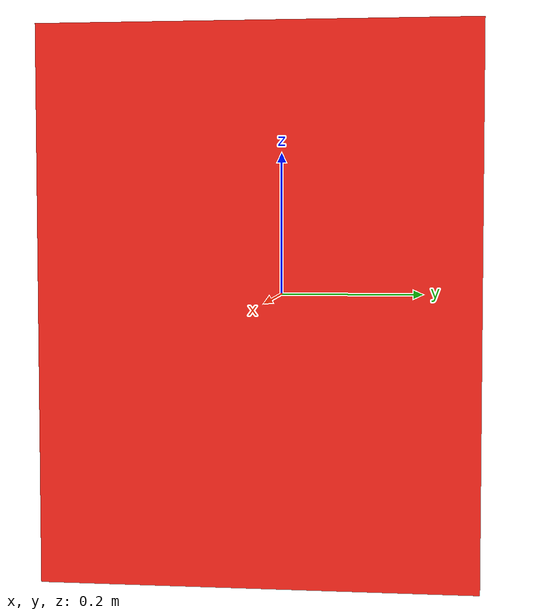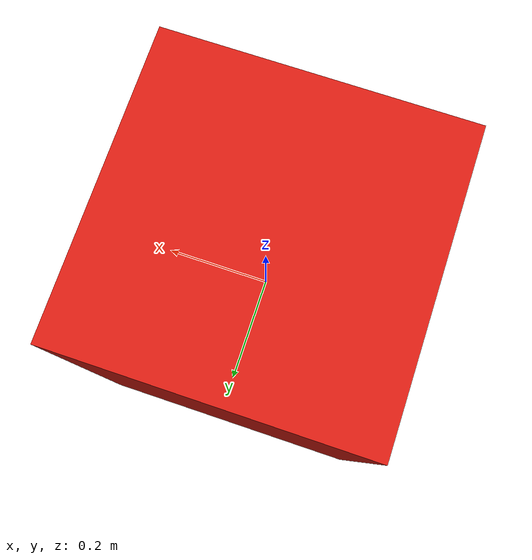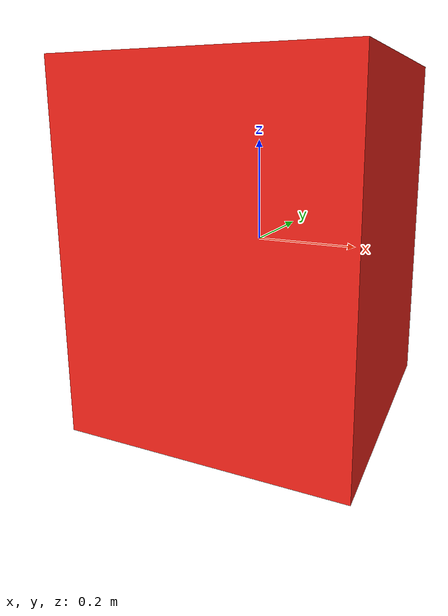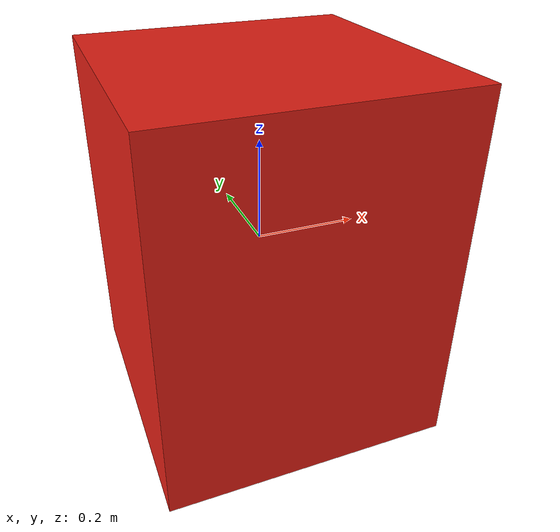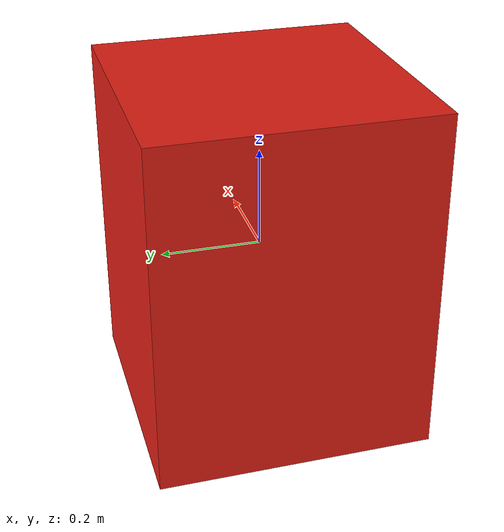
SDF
<?xml version="1.0"?>
<sdf version="1.9">
  <model name="temporary_box_obstacle">
    <static>true</static>
    <link name="link">
      <collision name="collision">
        <geometry>
          <box>
            <size>0.55 0.55 0.70</size>
          </box>
        </geometry>
      </collision>
      <visual name="visual">
        <geometry>
          <box>
            <size>0.55 0.55 0.70</size>
          </box>
        </geometry>
        <material>
          <ambient>0.88 0.12 0.08 1</ambient>
          <diffuse>0.88 0.12 0.08 1</diffuse>
          <emissive>0.18 0.02 0.00 1</emissive>
        </material>
      </visual>
    </link>
  </model>
</sdf>
